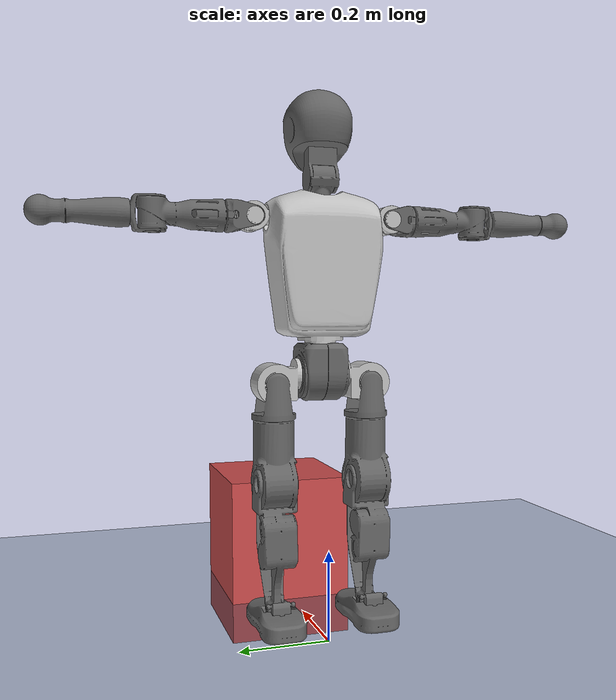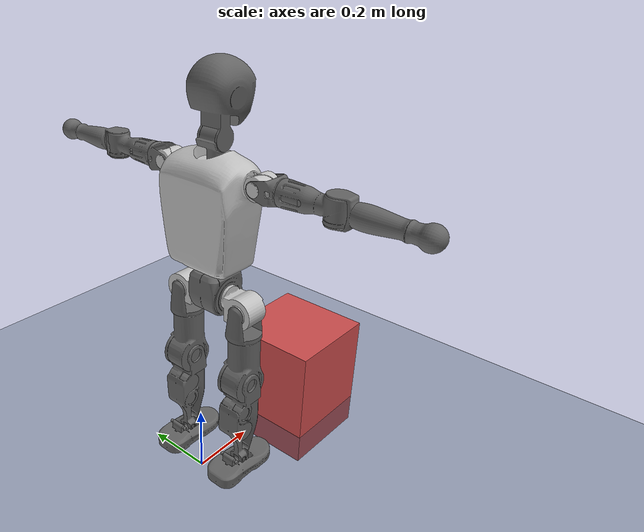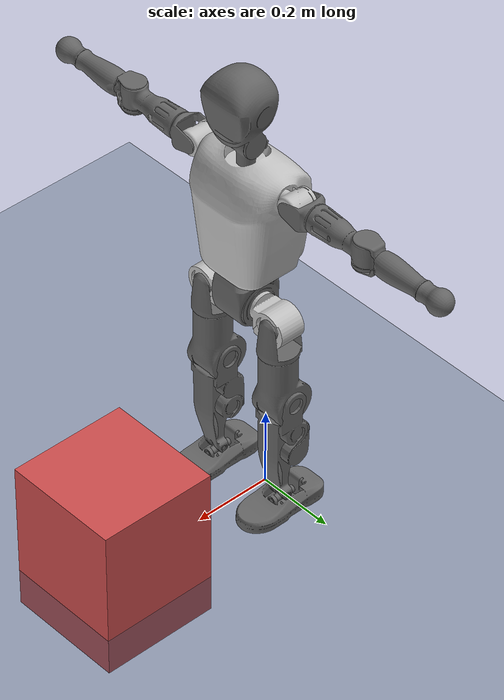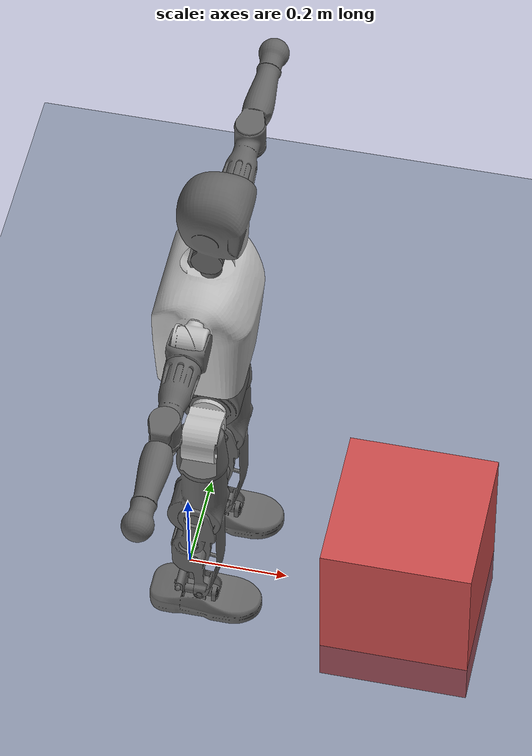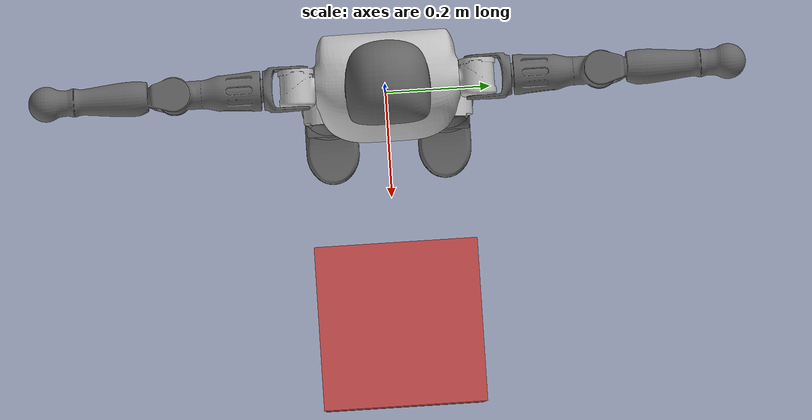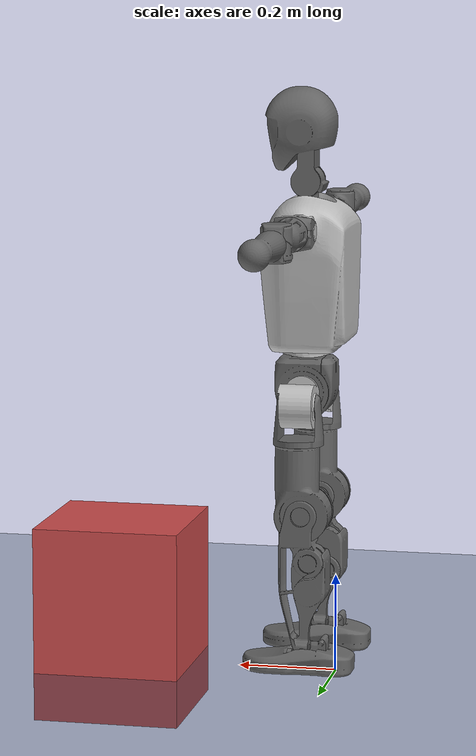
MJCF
<mujoco model="t1 scene">
  <include file="t1.xml"/>
  <include file="box.xml"/>

  <visual>
    <headlight diffuse="0.35 0.35 0.35" ambient="0.12 0.12 0.12" specular="0.05 0.05 0.05"/>
    <rgba haze="0 0 0 0"/>
    <global azimuth="-160" elevation="-20"/>
  </visual>

  <asset>
    <texture type="skybox" builtin="gradient" rgb1="0.3 0.5 0.7" rgb2="0 0 0" width="512" height="3072"/>
    <texture type="2d" name="groundplane" builtin="checker" mark="edge" rgb1="0.2 0.3 0.4" rgb2="0.1 0.2 0.3"
      markrgb="0.8 0.8 0.8" width="300" height="300"/>
    <material name="groundplane" texture="groundplane" texuniform="true" texrepeat="5 5" reflectance="0.2"/>
  </asset>

  <worldbody>
    <light pos="0 0 1.5" dir="0 0 -1" directional="true"/>
    <geom name="floor" size="0 0 0.05" type="plane" condim="1" material="groundplane"/>
  </worldbody>
</mujoco>

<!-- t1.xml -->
<mujoco model="T1">
  <compiler angle="radian" meshdir="assets" autolimits="true"/>

  <option integrator="implicitfast"/>

  <asset>
    <material name="light_gray" rgba="0.76 0.76 0.76 1"/>
    <material name="medium_gray" rgba="0.4 0.4 0.4 1"/>

    <mesh file="Trunk.stl"/>
    <mesh file="H1.stl"/>
    <mesh file="H2.stl"/>
    <mesh file="AL1.stl"/>
    <mesh file="AL2.stl"/>
    <mesh file="AL3.stl"/>
    <mesh file="left_hand_link.stl"/>
    <mesh file="AR1.stl"/>
    <mesh file="AR2.stl"/>
    <mesh file="AR3.stl"/>
    <mesh file="right_hand_link.stl"/>
    <mesh file="Waist.stl"/>
    <mesh file="Hip_Pitch_Left.stl"/>
    <mesh file="Hip_Roll_Left.stl"/>
    <mesh file="Hip_Yaw_Left.stl"/>
    <mesh file="Shank_Left.stl"/>
    <mesh file="Ankle_Cross_Left.stl"/>
    <mesh file="left_foot_link.stl"/>
    <mesh file="Hip_Pitch_Right.stl"/>
    <mesh file="Hip_Roll_Right.stl"/>
    <mesh file="Hip_Yaw_Right.stl"/>
    <mesh file="Shank_Right.stl"/>
    <mesh file="Ankle_Cross_Right.stl"/>
    <mesh file="right_foot_link.stl"/>
  </asset>

  <default>
    <default class="t1">
      <geom material="medium_gray"/>
      <site rgba="1 0 0 1" size="0.01" group="5"/>
      <joint frictionloss="0.1" armature="0.005"/>
      <position inheritrange="1" kp="200" kv="6"/>
      <default class="visual">
        <geom type="mesh" contype="0" conaffinity="0" group="2"/>
      </default>
      <default class="collision">
        <geom group="3"/>
      </default>
    </default>
  </default>

  <worldbody>
    <light pos="1 0 3.5" dir="0 0 -1" directional="true"/>
    <body name="Trunk" pos="0 0 .7" childclass="t1">
      <freejoint/>
      <inertial pos="0.0551365 -1.42058e-06 0.105062" quat="0.99996 1.40561e-05 -0.00899532 -1.39249e-05" mass="11.7"
        diaginertia="0.0915404 0.0767787 0.0556055"/>
      <site name="imu"/>
      <geom class="visual" material="light_gray" mesh="Trunk"/>
      <geom class="collision" size="0.075 0.1 0.15" pos="0.06 0 0.12" type="box"/>
      <body name="H1" pos="0.0625 0 0.243">
        <inertial pos="-0.000508 -0.001403 0.057432" quat="0.763881 -0.0132172 0.00173419 0.645219" mass="0.44391"
          diaginertia="0.000241549 0.00022351 0.000149941"/>
        <joint name="AAHead_yaw" axis="0 0 1" range="-1.57 1.57" actuatorfrcrange="-7 7"/>
        <geom class="visual" mesh="H1"/>
        <body name="H2" pos="0 0 0.06185">
          <inertial pos="0.007802 0.001262 0.098631" quat="0.988453 0.106172 -0.0745686 -0.0782786" mass="0.631019"
            diaginertia="0.00203553 0.00192467 0.00172381"/>
          <joint name="Head_pitch" axis="0 1 0" range="-0.35 1.22" actuatorfrcrange="-7 7"/>
          <geom class="visual" mesh="H2"/>
          <geom class="collision" size="0.08" pos="0.01 0 0.11"/>
        </body>
      </body>
      <body name="AL1" pos="0.0575 0.1063 0.219" quat="1 0 0.000440565 0">
        <inertial pos="-0.000677 0.044974 0" quat="0.50423 0.495734 -0.50423 0.495734" mass="0.53"
          diaginertia="0.001367 0.00129329 0.000292711"/>
        <joint name="Left_Shoulder_Pitch" axis="0 1 0" range="-3.31 1.22" actuatorfrcrange="-18 18"/>
        <geom class="visual" material="light_gray" mesh="AL1"/>
        <body name="AL2" pos="0 0.047 0">
          <inertial pos="0.003862 0.037976 0" quat="0.487991 0.511727 -0.487991 0.511727" mass="0.16"
            diaginertia="0.000401 0.00034538 0.00017662"/>
          <joint name="Left_Shoulder_Roll" axis="1 0 0" range="-1.74 1.57" actuatorfrcrange="-18 18"/>
          <geom class="visual" mesh="AL2"/>
          <body name="AL3" pos="0.00025 0.0605 0">
            <inertial pos="0 0.085353 -9.9e-05" quat="0.70641 0.707803 0 0" mass="1.02"
              diaginertia="0.012869 0.012798 0.000620953"/>
            <joint name="Left_Elbow_Pitch" axis="0 1 0" range="-2.27 2.27" actuatorfrcrange="-18 18"/>
            <geom class="visual" mesh="AL3"/>
            <geom class="collision" size="0.03 0.075" pos="0 0.05 0" quat="0.707105 0.707108 0 0" type="cylinder"/>
            <body name="left_hand_link" pos="0 0.1471 0">
              <inertial pos="-0.000108 0.109573 0.000591" quat="0.707866 0.706347 -5.22939e-05 -0.000214913"
                mass="0.327214" diaginertia="0.008159 0.00813104 0.000214962"/>
              <joint name="Left_Elbow_Yaw" axis="0 0 1" range="-2.44 0" actuatorfrcrange="-18 18"/>
              <geom class="visual" mesh="left_hand_link"/>
              <geom class="collision" size="0.03 0.0875" pos="0 0.13 0" quat="0.707105 0.707108 0 0" type="cylinder"/>
            </body>
          </body>
        </body>
      </body>
      <body name="AR1" pos="0.0575 -0.1063 0.219" quat="1 0 0.000440565 0">
        <inertial pos="-0.000677 -0.044974 0" quat="0.50423 0.495734 -0.50423 0.495734" mass="0.53"
          diaginertia="0.001367 0.00129329 0.000292711"/>
        <joint name="Right_Shoulder_Pitch" axis="0 1 0" range="-3.31 1.22" actuatorfrcrange="-18 18"/>
        <geom class="visual" material="light_gray" mesh="AR1"/>
        <body name="AR2" pos="0 -0.047 0">
          <inertial pos="0.003862 -0.037976 0" quat="0.511727 0.487991 -0.511727 0.487991" mass="0.16"
            diaginertia="0.000401 0.00034538 0.00017662"/>
          <joint name="Right_Shoulder_Roll" axis="1 0 0" range="-1.57 1.74" actuatorfrcrange="-18 18"/>
          <geom class="visual" mesh="AR2"/>
          <body name="AR3" pos="0.00025 -0.0605 0">
            <inertial pos="0 -0.085353 -9.9e-05" quat="0.707803 0.70641 0 0" mass="1.02"
              diaginertia="0.012869 0.012798 0.000620953"/>
            <joint name="Right_Elbow_Pitch" axis="0 1 0" range="-2.27 2.27" actuatorfrcrange="-18 18"/>
            <geom class="visual" mesh="AR3"/>
            <geom class="collision" size="0.03 0.075" pos="0 -0.05 0" quat="0.707105 0.707108 0 0" type="cylinder"/>
            <body name="right_hand_link" pos="0 -0.1471 0">
              <inertial pos="-0.000108 -0.109573 0.000591" quat="0.706347 0.707866 0.000214913 5.22939e-05"
                mass="0.327214" diaginertia="0.008159 0.00813104 0.000214962"/>
              <joint name="Right_Elbow_Yaw" axis="0 0 1" range="0 2.44" actuatorfrcrange="-18 18"/>
              <geom class="visual" mesh="right_hand_link"/>
              <geom class="collision" size="0.03 0.0875" pos="0 -0.13 0" quat="0.707105 0.707108 0 0" type="cylinder"/>
            </body>
          </body>
        </body>
      </body>
      <body name="Waist" pos="0.0625 0 -0.1155">
        <inertial pos="0.002284 3e-06 0.007301" quat="0.983649 0.000360386 -0.180076 0.00269791" mass="2.581"
          diaginertia="0.00536742 0.005299 0.00474258"/>
        <joint name="Waist" axis="0 0 1" range="-1.57 1.57" actuatorfrcrange="-30 30"/>
        <geom class="visual" mesh="Waist"/>
        <body name="Hip_Pitch_Left" pos="0 0.106 0">
          <inertial pos="0.000534 -0.007296 -0.018083" quat="0.975141 0.2211 0.0145808 0.0017406" mass="1.021"
            diaginertia="0.00180547 0.00145926 0.00125327"/>
          <joint name="Left_Hip_Pitch" axis="0 1 0" range="-1.8 1.57" actuatorfrcrange="-45 45"/>
          <geom class="visual" material="light_gray" mesh="Hip_Pitch_Left"/>
          <body name="Hip_Roll_Left" pos="0 0 -0.02">
            <inertial pos="0.001101 2.4e-05 -0.05375" quat="0.707081 -0.00599604 -0.00599604 0.707081" mass="0.385"
              diaginertia="0.001743 0.00151729 0.000514712"/>
            <joint name="Left_Hip_Roll" axis="1 0 0" range="-0.2 1.57" actuatorfrcrange="-30 30"/>
            <geom class="visual" mesh="Hip_Roll_Left"/>
            <body name="Hip_Yaw_Left" pos="0 0 -0.081854">
              <inertial pos="-0.007233 0.000206 -0.089184" quat="0.696808 -0.033953 -0.0315708 0.715758" mass="2.166"
                diaginertia="0.0257334 0.0253024 0.00259215"/>
              <joint name="Left_Hip_Yaw" axis="0 0 1" range="-1 1" actuatorfrcrange="-30 30"/>
              <geom class="visual" mesh="Hip_Yaw_Left"/>
              <geom class="collision" size="0.05 0.08" type="cylinder"/>
              <body name="Shank_Left" pos="-0.014 0 -0.134">
                <inertial pos="-0.006012 0.000259 -0.124318" quat="0.997573 0.00144024 -0.023949 0.0653706" mass="1.73"
                  diaginertia="0.0346951 0.0345375 0.00185844"/>
                <joint name="Left_Knee_Pitch" axis="0 1 0" range="0 2.34" actuatorfrcrange="-60 60"/>
                <geom class="visual" mesh="Shank_Left"/>
                <geom class="collision" size="0.05 0.075" pos="0 0 -0.12" type="cylinder"/>
                <body name="Ankle_Cross_Left" pos="0 0 -0.28">
                  <inertial pos="-0.003722 0 -0.007981" quat="0.443136 0.551027 0.551027 0.443136" mass="0.073"
                    diaginertia="2.9e-05 2.56589e-05 1.13411e-05"/>
                  <joint name="Left_Ankle_Pitch" axis="0 1 0" range="-0.87 0.35" actuatorfrcrange="-20 20"/>
                  <geom class="visual" mesh="Ankle_Cross_Left"/>
                  <body name="left_foot_link" pos="0 0.00025 -0.012">
                    <inertial pos="-0.000249 0 -0.00914" quat="0 0.620755 0 0.784005" mass="0.685"
                      diaginertia="0.00269786 0.002385 0.00218714"/>
                    <joint name="Left_Ankle_Roll" axis="1 0 0" range="-0.44 0.44" actuatorfrcrange="-15 15"/>
                    <geom class="visual" mesh="left_foot_link"/>
                    <geom class="collision" size="0.1115 0.05 0.015" pos="0.01 0 -0.015" type="box"/>
                  </body>
                </body>
              </body>
            </body>
          </body>
        </body>
        <body name="Hip_Pitch_Right" pos="0 -0.106 0">
          <inertial pos="0.000534 0.007514 -0.018082" quat="0.973446 -0.228403 0.0147148 -0.00419349" mass="1.021"
            diaginertia="0.00180552 0.0014632 0.00124928"/>
          <joint name="Right_Hip_Pitch" axis="0 1 0" range="-1.8 1.57" actuatorfrcrange="-45 45"/>
          <geom class="visual" material="light_gray" mesh="Hip_Pitch_Right"/>
          <body name="Hip_Roll_Right" pos="0 0 -0.02">
            <inertial pos="0.001099 2.4e-05 -0.053748" quat="0.707081 -0.00599604 -0.00599604 0.707081" mass="0.385"
              diaginertia="0.001743 0.00151729 0.000514712"/>
            <joint name="Right_Hip_Roll" axis="1 0 0" range="-1.57 0.2" actuatorfrcrange="-30 30"/>
            <geom class="visual" mesh="Hip_Roll_Right"/>
            <body name="Hip_Yaw_Right" pos="0 0 -0.081854">
              <inertial pos="-0.007191 -0.000149 -0.08922" quat="0.714468 -0.0315638 -0.0336391 0.698146" mass="2.17"
                diaginertia="0.0257623 0.0253298 0.00259389"/>
              <joint name="Right_Hip_Yaw" axis="0 0 1" range="-1 1" actuatorfrcrange="-30 30"/>
              <geom class="visual" mesh="Hip_Yaw_Right"/>
              <geom class="collision" size="0.05 0.08" type="cylinder"/>
              <body name="Shank_Right" pos="-0.014 0 -0.134">
                <inertial pos="-0.005741 -0.000541 -0.122602" quat="0.99926 -0.000580963 -0.023461 -0.0304754"
                  mass="1.79" diaginertia="0.0351717 0.0349574 0.00196589"/>
                <joint name="Right_Knee_Pitch" axis="0 1 0" range="0 2.34" actuatorfrcrange="-60 60"/>
                <geom class="visual" mesh="Shank_Right"/>
                <geom class="collision" size="0.05 0.075" pos="0 0 -0.12" type="cylinder"/>
                <body name="Ankle_Cross_Right" pos="0 0 -0.28">
                  <inertial pos="-0.003722 0 -0.007981" quat="0.443136 0.551027 0.551027 0.443136" mass="0.073"
                    diaginertia="2.9e-05 2.56589e-05 1.13411e-05"/>
                  <joint name="Right_Ankle_Pitch" axis="0 1 0" range="-0.87 0.35" actuatorfrcrange="-20 20"/>
                  <geom class="visual" mesh="Ankle_Cross_Right"/>
                  <body name="right_foot_link" pos="0 -0.00025 -0.012">
                    <inertial pos="-0.000248 0 -0.00914" quat="0 0.620755 0 0.784005" mass="0.685"
                      diaginertia="0.00269786 0.002385 0.00218714"/>
                    <joint name="Right_Ankle_Roll" axis="1 0 0" range="-0.44 0.44" actuatorfrcrange="-15 15"/>
                    <geom class="visual" mesh="right_foot_link"/>
                    <geom class="collision" size="0.1115 0.05 0.015" pos="0.01 0 -0.015" type="box"/>
                  </body>
                </body>
              </body>
            </body>
          </body>
        </body>
      </body>
    </body>
  </worldbody>

  <sensor>
    <gyro name="angular-velocity" site="imu"/>
    <accelerometer name="linear-acceleration" site="imu"/>
    <framequat name="orientation" objtype="site" objname="imu"/>
  </sensor>

  <actuator>
    <position class="t1" name="AAHead_yaw" joint="AAHead_yaw"/>
    <position class="t1" name="Head_pitch" joint="Head_pitch"/>
    <position class="t1" name="Left_Shoulder_Pitch" joint="Left_Shoulder_Pitch"/>
    <position class="t1" name="Left_Shoulder_Roll" joint="Left_Shoulder_Roll"/>
    <position class="t1" name="Left_Elbow_Pitch" joint="Left_Elbow_Pitch"/>
    <position class="t1" name="Left_Elbow_Yaw" joint="Left_Elbow_Yaw"/>
    <position class="t1" name="Right_Shoulder_Pitch" joint="Right_Shoulder_Pitch"/>
    <position class="t1" name="Right_Shoulder_Roll" joint="Right_Shoulder_Roll"/>
    <position class="t1" name="Right_Elbow_Pitch" joint="Right_Elbow_Pitch"/>
    <position class="t1" name="Right_Elbow_Yaw" joint="Right_Elbow_Yaw"/>
    <position class="t1" name="Waist" joint="Waist"/>
    <position class="t1" name="Left_Hip_Pitch" joint="Left_Hip_Pitch"/>
    <position class="t1" name="Left_Hip_Roll" joint="Left_Hip_Roll"/>
    <position class="t1" name="Left_Hip_Yaw" joint="Left_Hip_Yaw"/>
    <position class="t1" name="Left_Knee_Pitch" joint="Left_Knee_Pitch"/>
    <position class="t1" name="Left_Ankle_Pitch" joint="Left_Ankle_Pitch"/>
    <position class="t1" name="Left_Ankle_Roll" joint="Left_Ankle_Roll"/>
    <position class="t1" name="Right_Hip_Pitch" joint="Right_Hip_Pitch"/>
    <position class="t1" name="Right_Hip_Roll" joint="Right_Hip_Roll"/>
    <position class="t1" name="Right_Hip_Yaw" joint="Right_Hip_Yaw"/>
    <position class="t1" name="Right_Knee_Pitch" joint="Right_Knee_Pitch"/>
    <position class="t1" name="Right_Ankle_Pitch" joint="Right_Ankle_Pitch"/>
    <position class="t1" name="Right_Ankle_Roll" joint="Right_Ankle_Roll"/>
  </actuator>

  <keyframe>
    <key name="home"
      qpos="
    0 0 0.665
    1 0 0 0
    0 0
    0 -1.4 0 -0.4
    0 1.4 0 0.4
    0
    -0.2 0 0 0.4 -0.2 0
    -0.2 0 0 0.4 -0.2 0
    "
      ctrl="
    0 0
    0 -1.4 0 -0.4
    0 1.4 0 0.4
    0
    -0.2 0 0 0.4 -0.2 0
    -0.2 0 0 0.4 -0.2 0
    "/>
  </keyframe>
</mujoco>

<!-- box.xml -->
<mujoco>
    <worldbody>
        <body name="box" pos="0.45 0 0.10">
            <geom
                type="box"
                size="0.15 0.15 0.2"
                density="500"
                rgba="0.8 0.3 0.3 1"/>
        </body>
    </worldbody>
</mujoco>
